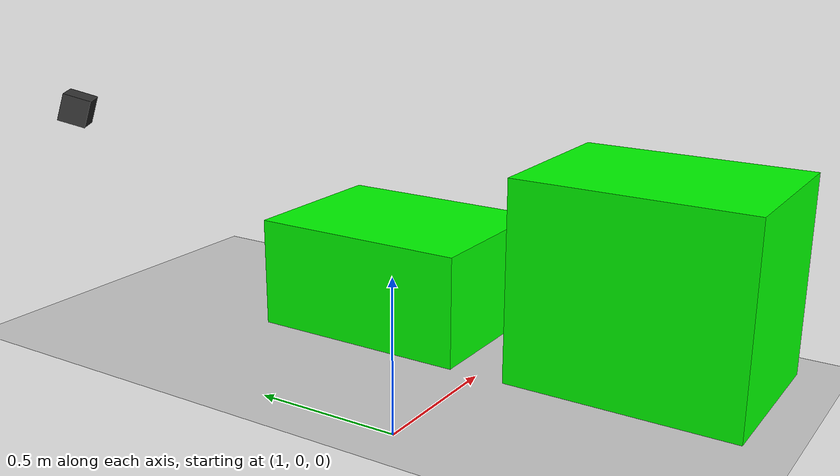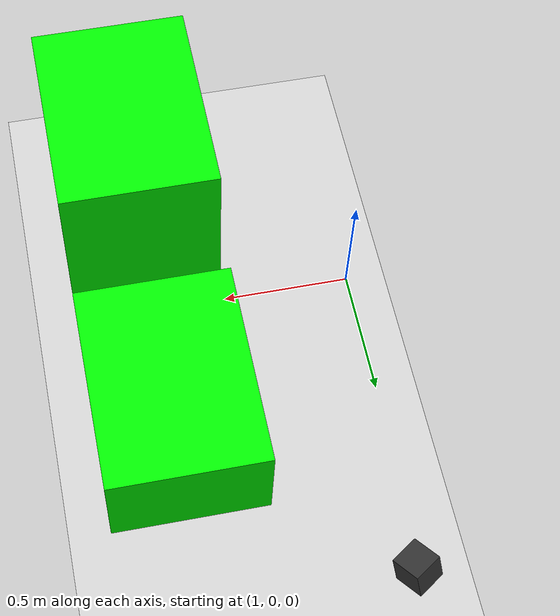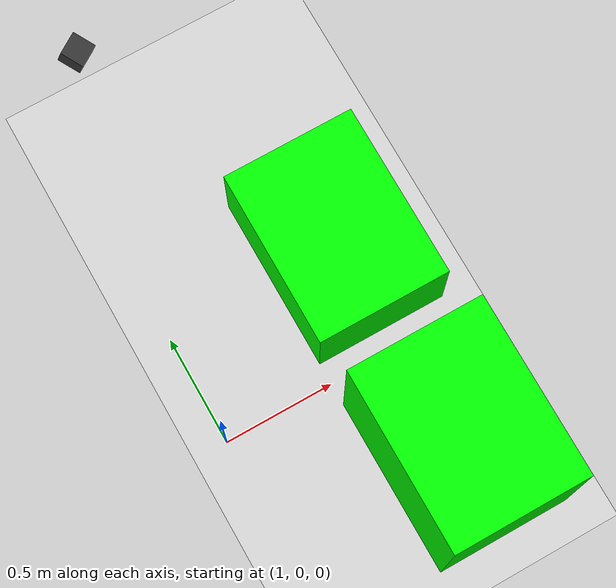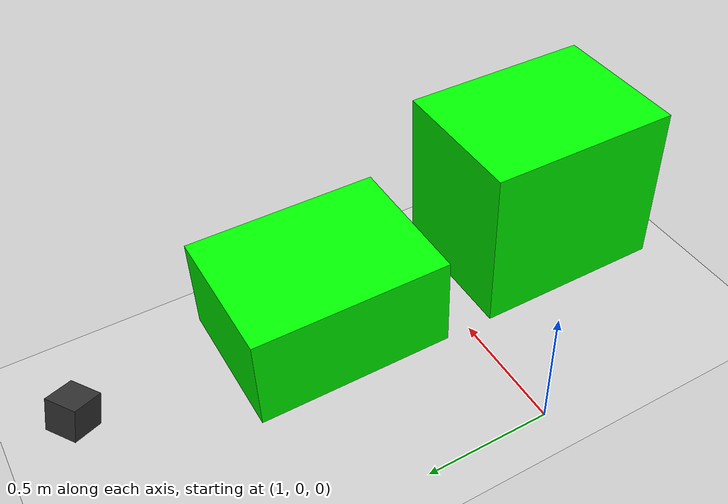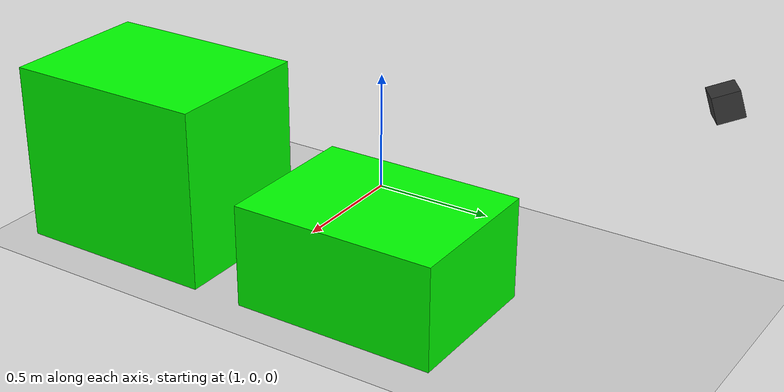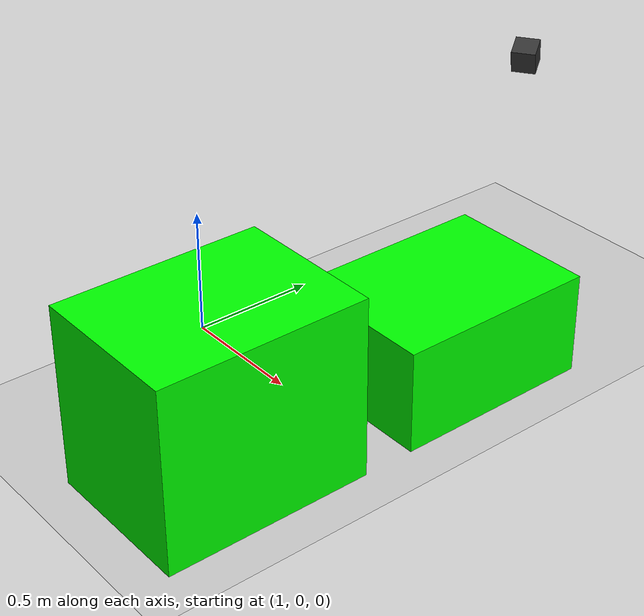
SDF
<sdf version="1.6">
  <world name="semantic_world">
    <physics name="1ms" type="ode">
      <max_step_size>0.004</max_step_size>
      <real_time_update_rate>250</real_time_update_rate>
    </physics>
    <plugin filename="libignition-gazebo-physics-system.so" name="ignition::gazebo::systems::Physics"/>
    <plugin filename="libignition-gazebo-user-commands-system.so" name="ignition::gazebo::systems::UserCommands"/>
    <plugin filename="libignition-gazebo-scene-broadcaster-system.so" name="ignition::gazebo::systems::SceneBroadcaster"/>
    <plugin filename="libignition-gazebo-sensors-system.so" name="ignition::gazebo::systems::Sensors"/>

    <light type="directional" name="sun">
      <cast_shadows>true</cast_shadows>
      <pose>0 0 10 0 0 0</pose>
      <diffuse>0.8 0.8 0.8 1</diffuse>
      <specular>0.2 0.2 0.2 1</specular>
      <direction>-0.5 0.1 -0.9</direction>
    </light>

    <model name="ground_plane">
      <static>true</static>
      <link name="link">
        <collision name="collision"><geometry><plane><normal>0 0 1</normal><size>100 100</size></plane></geometry></collision>
        <visual name="visual"><geometry><plane><normal>0 0 1</normal><size>100 100</size></plane></geometry>
          <material><ambient>0.8 0.8 0.8 1</ambient><diffuse>0.8 0.8 0.8 1</diffuse></material>
        </visual>
      </link>
    </model>

    <model name="low_table">
      <static>true</static>
      <pose>1.8 0.5 0.2 0 0 0</pose> <link name="link">
        <visual name="visual">
          <geometry><box><size>0.6 0.8 0.4</size></box></geometry>
          <material><ambient>0 1 0 1</ambient><diffuse>0 1 0 1</diffuse></material> </visual>
        <collision name="collision"><geometry><box><size>0.6 0.8 0.4</size></box></geometry></collision>
      </link>
    </model>

    <model name="high_table">
      <static>true</static>
      <pose>1.8 -0.5 0.35 0 0 0</pose> <link name="link">
        <visual name="visual">
          <geometry><box><size>0.6 0.8 0.7</size></box></geometry>
          <material><ambient>0 1 0 1</ambient><diffuse>0 1 0 1</diffuse></material> </visual>
        <collision name="collision"><geometry><box><size>0.6 0.8 0.7</size></box></geometry></collision>
      </link>
    </model>

    <model name="camera_sensor">
      <static>true</static>
      <pose>1.2 1.5 0.8 0 0.3 -0.99</pose>
      <link name="link">
        <visual name="visual">
          <geometry>
            <box>
              <size>0.1 0.1 0.1</size>
            </box>
          </geometry>
          <material>
            <ambient>0.2 0.2 0.2 1</ambient>
            <diffuse>0.2 0.2 0.2 1</diffuse>
          </material>
        </visual>

        <collision name="collision">
          <geometry>
            <box>
              <size>0.1 0.1 0.1</size>
            </box>
          </geometry>
        </collision>

        <sensor name="color_camera" type="camera">
          <update_rate>30</update_rate>
          <topic>camera/image</topic>
          <camera>
            <horizontal_fov>1.05</horizontal_fov>
            <image>
              <width>640</width>
              <height>480</height>
              <format>R8G8B8</format>
            </image>
            <clip>
              <near>0.1</near>
              <far>10.0</far>
            </clip>
          </camera>
        </sensor>

        <sensor name="depth_camera" type="depth_camera">
          <update_rate>30</update_rate>
          <topic>camera/depth_image</topic>
          <camera>
            <horizontal_fov>1.05</horizontal_fov>
            <image>
              <width>640</width>
              <height>480</height>
              <format>R_FLOAT32</format>
            </image>
            <clip>
              <near>0.1</near>
              <far>10.0</far>
            </clip>
          </camera>
        </sensor>
      </link>
    </model>
  </world>
</sdf>
